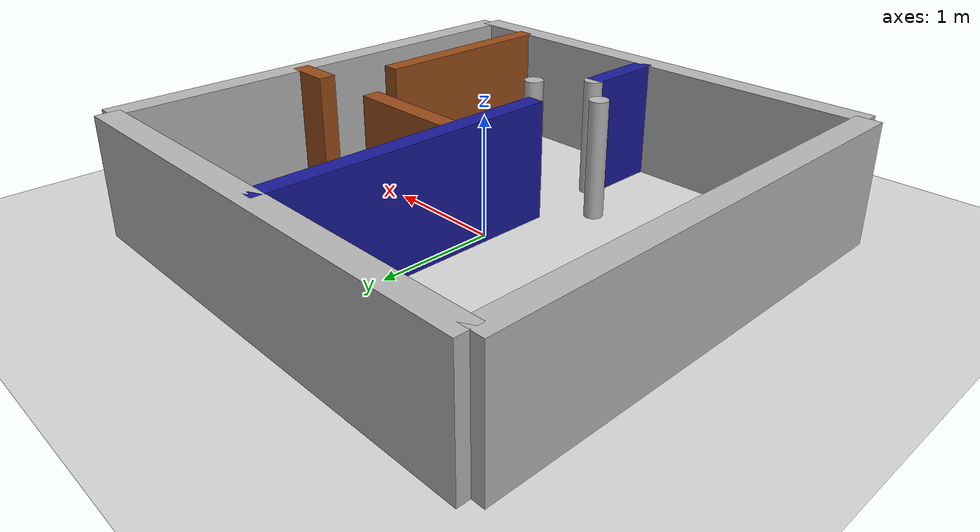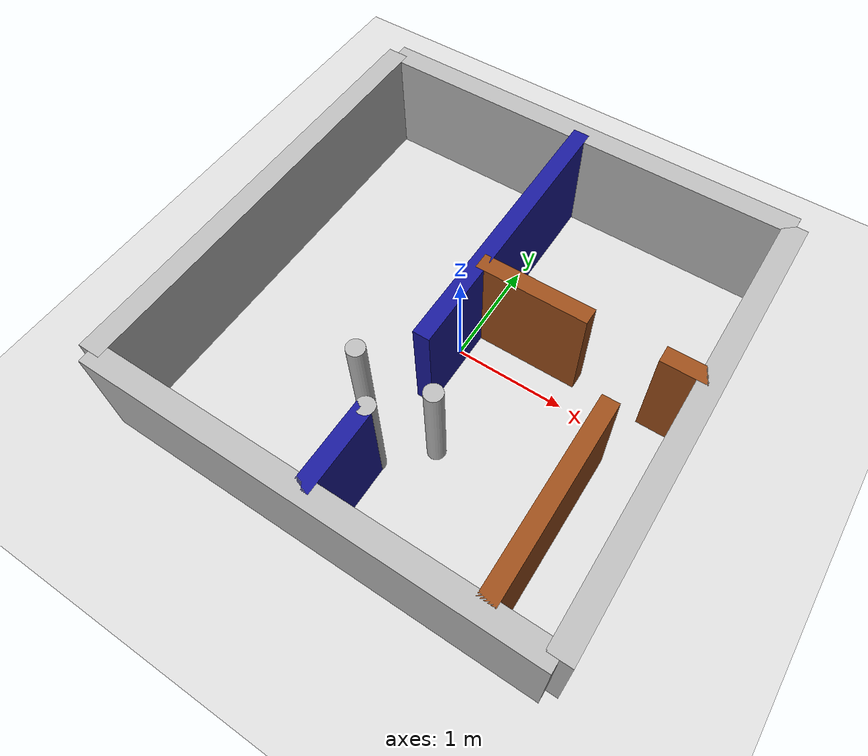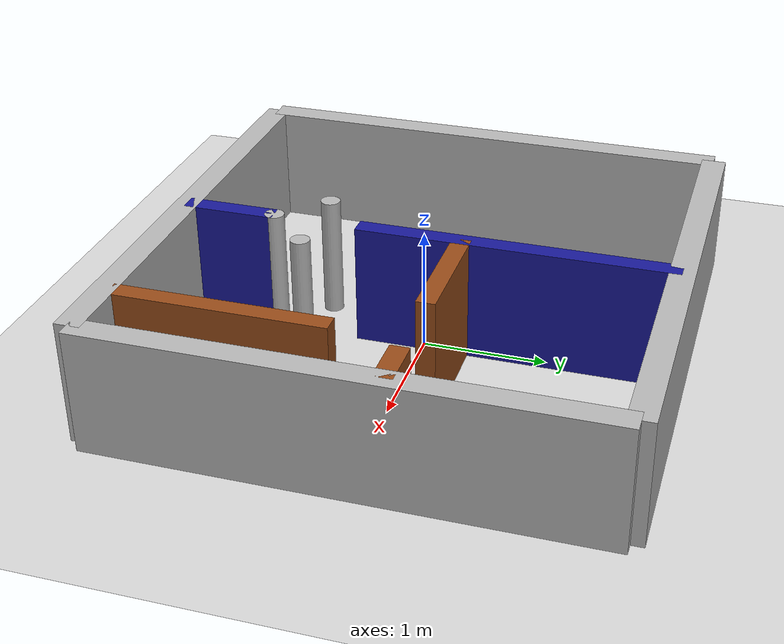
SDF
<?xml version="1.0" ?>
<sdf version="1.8">
  <world name="demo">
    <plugin filename="gz-sim-physics-system" name="gz::sim::systems::Physics"/>
    <plugin filename="gz-sim-sensors-system" name="gz::sim::systems::Sensors">
      <render_engine>ogre2</render_engine>
    </plugin>
    <plugin filename="gz-sim-scene-broadcaster-system" name="gz::sim::systems::SceneBroadcaster"/>
    <plugin filename="gz-sim-user-commands-system" name="gz::sim::systems::UserCommands"/>

    <light name="sun" type="directional">
      <cast_shadows>true</cast_shadows>
      <pose>0 0 10 0 0 0</pose>
      <diffuse>0.8 0.8 0.8 1</diffuse>
      <specular>0.2 0.2 0.2 1</specular>
      <attenuation>
        <range>1000</range>
        <constant>0.9</constant>
        <linear>0.01</linear>
        <quadratic>0.001</quadratic>
      </attenuation>
      <direction>-0.5 0.1 -0.9</direction>
    </light>

    <model name="ground_plane">
      <static>true</static>
      <link name="link">
        <collision name="collision">
          <geometry>
            <plane>
              <normal>0 0 1</normal>
              <size>100 100</size>
            </plane>
          </geometry>
        </collision>
        <visual name="visual">
          <geometry>
            <plane>
              <normal>0 0 1</normal>
              <size>100 100</size>
            </plane>
          </geometry>
          <material>
            <ambient>0.85 0.85 0.85 1</ambient>
            <diffuse>0.85 0.85 0.85 1</diffuse>
          </material>
        </visual>
      </link>
    </model>

    <!-- Outer 4x4 boundary with collision -->
    <model name="arena_wall_east">
      <static>true</static>
      <pose>2 0 0.5 0 0 0</pose>
      <link name="link">
        <collision name="collision"><geometry><box><size>0.2 4 1</size></box></geometry></collision>
        <visual name="visual"><geometry><box><size>0.2 4 1</size></box></geometry></visual>
      </link>
    </model>
    <model name="arena_wall_west">
      <static>true</static>
      <pose>-2 0 0.5 0 0 0</pose>
      <link name="link">
        <collision name="collision"><geometry><box><size>0.2 4 1</size></box></geometry></collision>
        <visual name="visual"><geometry><box><size>0.2 4 1</size></box></geometry></visual>
      </link>
    </model>
    <model name="arena_wall_north">
      <static>true</static>
      <pose>0 2 0.5 0 0 1.57079632679</pose>
      <link name="link">
        <collision name="collision"><geometry><box><size>0.2 4 1</size></box></geometry></collision>
        <visual name="visual"><geometry><box><size>0.2 4 1</size></box></geometry></visual>
      </link>
    </model>
    <model name="arena_wall_south">
      <static>true</static>
      <pose>0 -2 0.5 0 0 1.57079632679</pose>
      <link name="link">
        <collision name="collision"><geometry><box><size>0.2 4 1</size></box></geometry></collision>
        <visual name="visual"><geometry><box><size>0.2 4 1</size></box></geometry></visual>
      </link>
    </model>

    <!-- Split wall at x=0 with a single narrow door (gap from y=-1.25 to y=-0.55 => 0.70 m) -->
    <model name="split_wall_top">
      <static>true</static>
      <pose>0 0.725 0.5 0 0 0</pose>
      <link name="link">
        <collision name="collision"><geometry><box><size>0.15 2.55 1</size></box></geometry></collision>
        <visual name="visual"><geometry><box><size>0.15 2.55 1</size></box></geometry>
          <material><ambient>0.1 0.1 0.6 1</ambient><diffuse>0.1 0.1 0.6 1</diffuse></material>
        </visual>
      </link>
    </model>

    <model name="split_wall_bottom">
      <static>true</static>
      <pose>0 -1.625 0.5 0 0 0</pose>
      <link name="link">
        <collision name="collision"><geometry><box><size>0.15 0.75 1</size></box></geometry></collision>
        <visual name="visual"><geometry><box><size>0.15 0.75 1</size></box></geometry>
          <material><ambient>0.1 0.1 0.6 1</ambient><diffuse>0.1 0.1 0.6 1</diffuse></material>
        </visual>
      </link>
    </model>

    <!-- S-bend wall in right room (forces path choices) -->
    <model name="right_wall_1a">
      <static>true</static>
      <pose>0.5 0.3 0.5 0 0 1.57079632679</pose>
      <link name="link">
        <collision name="collision"><geometry><box><size>0.15 1.0 1</size></box></geometry></collision>
        <visual name="visual"><geometry><box><size>0.15 1.0 1</size></box></geometry>
          <material><ambient>0.6 0.3 0.1 1</ambient><diffuse>0.6 0.3 0.1 1</diffuse></material>
        </visual>
      </link>
    </model>

    <model name="right_wall_1b">
      <static>true</static>
      <pose>1.8 0.3 0.5 0 0 1.57079632679</pose>
      <link name="link">
        <collision name="collision"><geometry><box><size>0.15 0.4 1</size></box></geometry></collision>
        <visual name="visual"><geometry><box><size>0.15 0.4 1</size></box></geometry>
          <material><ambient>0.6 0.3 0.1 1</ambient><diffuse>0.6 0.3 0.1 1</diffuse></material>
        </visual>
      </link>
    </model>
    <model name="right_wall_2">
      <static>true</static>
      <pose>1.45 -1.1 0.5 0 0 0</pose>
      <link name="link">
        <collision name="collision"><geometry><box><size>0.15 1.7 1</size></box></geometry></collision>
        <visual name="visual"><geometry><box><size>0.15 1.7 1</size></box></geometry>
          <material><ambient>0.6 0.3 0.1 1</ambient><diffuse>0.6 0.3 0.1 1</diffuse></material>
        </visual>
      </link>
    </model>

    <!-- Pillars near the door to create local congestion -->
    <model name="pillar_1"><static>true</static><pose>-0.35 -0.9 0.5 0 0 0</pose><link name="link">
      <collision name="collision"><geometry><cylinder><radius>0.08</radius><length>1</length></cylinder></geometry></collision>
      <visual name="visual"><geometry><cylinder><radius>0.08</radius><length>1</length></cylinder></geometry></visual>
    </link></model>
    <model name="pillar_2"><static>true</static><pose>0.35 -0.9 0.5 0 0 0</pose><link name="link">
      <collision name="collision"><geometry><cylinder><radius>0.08</radius><length>1</length></cylinder></geometry></collision>
      <visual name="visual"><geometry><cylinder><radius>0.08</radius><length>1</length></cylinder></geometry></visual>
    </link></model>
    <model name="pillar_3"><static>true</static><pose>0.0 -1.25 0.5 0 0 0</pose><link name="link">
      <collision name="collision"><geometry><cylinder><radius>0.08</radius><length>1</length></cylinder></geometry></collision>
      <visual name="visual"><geometry><cylinder><radius>0.08</radius><length>1</length></cylinder></geometry></visual>
    </link></model>

  </world>
</sdf>
